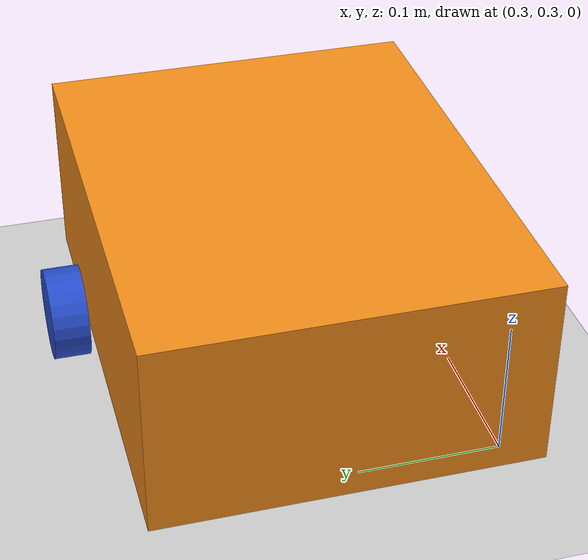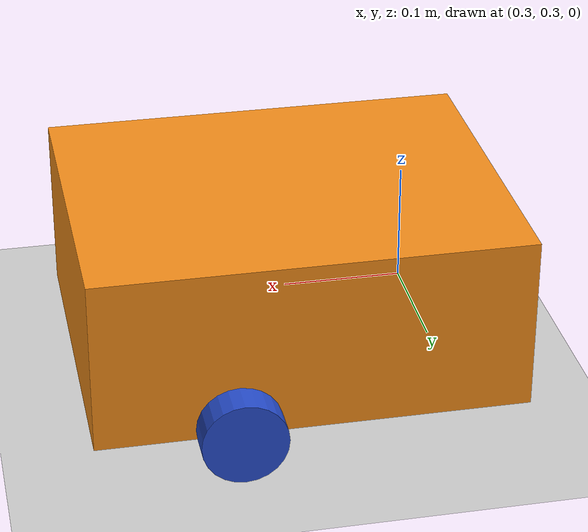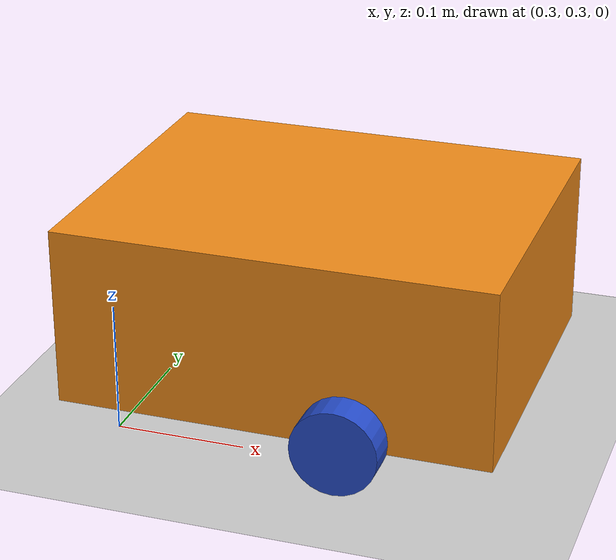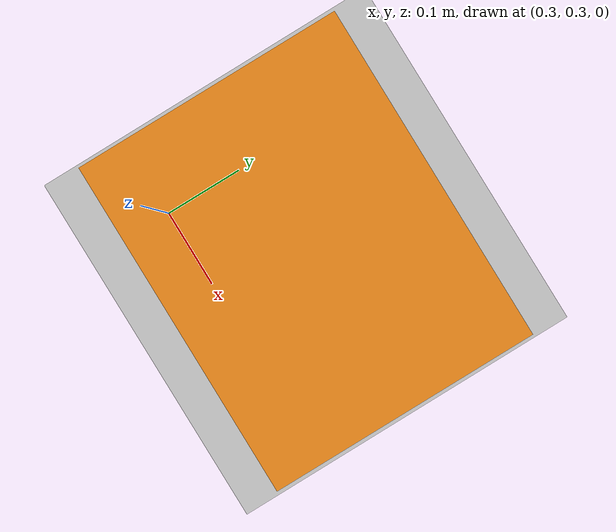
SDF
<sdf version="1.7">
 <world name="default">
  <light name="sun" type="directional">
   <pose>0 0 10 0 -0 0</pose>
   <diffuse>0.8 0.8 0.8 1</diffuse>
   <specular>0.2 0.2 0.2 1</specular>
   <attenuation>
    <range>1000</range>
    <constant>0.9</constant>
    <linear>0.01</linear>
    <quadratic>0.001</quadratic>
   </attenuation>
   <direction>-0.5 0.1 -0.9</direction>
   <spot><inner_angle>0</inner_angle><outer_angle>0</outer_angle><falloff>0</falloff></spot>
  </light>
  <model name="ground_plane">
   <static>1</static>
   <link name="link">
    <collision name="collision">
     <geometry><plane><normal>0 0 1</normal><size>100 100</size></plane></geometry>
     <surface>
      <contact><collide_bitmask>65535</collide_bitmask></contact>
      <friction><ode><mu>100</mu><mu2>50</mu2></ode></friction>
     </surface>
    </collision>
    <visual name="visual">
     <cast_shadows>0</cast_shadows>
     <geometry><plane><normal>0 0 1</normal><size>100 100</size></plane></geometry>
     <material>
      <script><uri>file://media/materials/scripts/gazebo.material</uri><name>Gazebo/Grey</name></script>
     </material>
    </visual>
   </link>
  </model>
  <gravity>0 0 -9.8</gravity>
  <magnetic_field>6e-06 2.3e-05 -4.2e-05</magnetic_field>
  <atmosphere type="adiabatic"/>
  <physics type="ode">
   <max_step_size>0.001</max_step_size>
   <real_time_factor>1</real_time_factor>
   <real_time_update_rate>1000</real_time_update_rate>
  </physics>
  <scene><ambient>0.4 0.4 0.4 1</ambient><background>0.7 0.7 0.7 1</background><shadows>1</shadows></scene>
  <spherical_coordinates>
   <surface_model>EARTH_WGS84</surface_model>
   <latitude_deg>0</latitude_deg>
   <longitude_deg>0</longitude_deg>
   <elevation>0</elevation>
   <heading_deg>0</heading_deg>
  </spherical_coordinates>
  <model name="my_robot_model">
   <link name="base_link">
    <inertial>
     <pose>-0.060314 0 0.057392 0 -0 0</pose>
     <mass>0.51</mass>
     <inertia>
      <ixx>0.00378586</ixx>
      <ixy>0</ixy>
      <ixz>-7.43627e-05</ixz>
      <iyy>0.00561975</iyy>
      <iyz>0</iyz>
      <izz>0.00768637</izz>
     </inertia>
    </inertial>
    <collision name="base_link_fixed_joint_lump__chassis_collision">
     <pose>-0.0585 0 0.059 0 -0 0</pose>
     <geometry><box><size>0.335 0.265 0.138</size></box></geometry>
    </collision>
    <collision name="base_link_fixed_joint_lump__caster_wheel_collision_1">
     <pose>-0.151 0 -0.023 0 -0 0</pose>
     <geometry><sphere><radius>0.01</radius></sphere></geometry>
     <surface><friction><ode><mu>0.001</mu><mu2>0.001</mu2></ode></friction></surface>
    </collision>
    <visual name="base_link_fixed_joint_lump__chassis_visual">
     <pose>-0.0585 0 0.059 0 -0 0</pose>
     <geometry><box><size>0.335 0.265 0.138</size></box></geometry>
     <material>
      <script><name>Gazebo/Orange</name><uri>file://media/materials/scripts/gazebo.material</uri></script>
     </material>
    </visual>
    <visual name="base_link_fixed_joint_lump__caster_wheel_visual_1">
     <pose>-0.151 0 -0.023 0 -0 0</pose>
     <geometry><sphere><radius>0.01</radius></sphere></geometry>
     <material>
      <script><name>Gazebo/White</name><uri>file://media/materials/scripts/gazebo.material</uri></script>
     </material>
    </visual>
   </link>
   <joint name="left_wheel_joint" type="revolute">
    <pose relative_to="base_link">0 0.1485 0 -1.5708 0 0</pose>
    <parent>base_link</parent>
    <child>left_wheel</child>
    <axis>
     <xyz>0 0 1</xyz>
     <limit><lower>-1e+16</lower><upper>1e+16</upper></limit>
     <dynamics><spring_reference>0</spring_reference><spring_stiffness>0</spring_stiffness></dynamics>
    </axis>
   </joint>
   <link name="left_wheel">
    <pose relative_to="left_wheel_joint">0 0 0 0 -0 0</pose>
    <inertial>
     <mass>0.05</mass>
     <inertia>
      <ixx>1.64292e-05</ixx>
      <ixy>0</ixy>
      <ixz>0</ixz>
      <iyy>1.64292e-05</iyy>
      <iyz>0</iyz>
      <izz>2.7225e-05</izz>
     </inertia>
    </inertial>
    <collision name="left_wheel_collision">
     <geometry><sphere><radius>0.033</radius></sphere></geometry>
    </collision>
    <visual name="left_wheel_visual">
     <geometry><cylinder><length>0.026</length><radius>0.033</radius></cylinder></geometry>
     <material>
      <script><name>Gazebo/Blue</name><uri>file://media/materials/scripts/gazebo.material</uri></script>
     </material>
    </visual>
   </link>
   <joint name="right_wheel_joint" type="revolute">
    <pose relative_to="base_link">0 -0.1485 0 1.5708 -0 0</pose>
    <parent>base_link</parent>
    <child>right_wheel</child>
    <axis>
     <xyz>0 0 -1</xyz>
     <limit><lower>-1e+16</lower><upper>1e+16</upper></limit>
     <dynamics><spring_reference>0</spring_reference><spring_stiffness>0</spring_stiffness></dynamics>
    </axis>
   </joint>
   <link name="right_wheel">
    <pose relative_to="right_wheel_joint">0 0 0 0 -0 0</pose>
    <inertial>
     <mass>0.05</mass>
     <inertia>
      <ixx>1.64292e-05</ixx>
      <ixy>0</ixy>
      <ixz>0</ixz>
      <iyy>1.64292e-05</iyy>
      <iyz>0</iyz>
      <izz>2.7225e-05</izz>
     </inertia>
    </inertial>
    <collision name="right_wheel_collision">
     <geometry><sphere><radius>0.033</radius></sphere></geometry>
    </collision>
    <visual name="right_wheel_visual">
     <geometry><cylinder><length>0.026</length><radius>0.033</radius></cylinder></geometry>
     <material>
      <script><name>Gazebo/Blue</name><uri>file://media/materials/scripts/gazebo.material</uri></script>
     </material>
    </visual>
   </link>
   <static>0</static>
   <plugin name="gazebo_ros_diff_drive" filename="libgazebo_ros_diff_drive.so">
    <leftJoint>left_wheel_joint</leftJoint>
    <rightJoint>right_wheel_joint</rightJoint>
    <wheelSeparation>0.297</wheelSeparation>
    <wheelDiameter>0.066</wheelDiameter>
    <commandTopic>/cmd_vel</commandTopic>
    <wheelTorque>200</wheelTorque>
    <wheelAcceleration>10.0</wheelAcceleration>
    <odometryFrame>odom</odometryFrame>
    <robotBaseFrame>base_link</robotBaseFrame>
    <publishOdom>1</publishOdom>
    <publish_odom_tf>1</publish_odom_tf>
    <publishWheelTF>1</publishWheelTF>
    <robotNamespace>/</robotNamespace>
   </plugin>
   <pose>0.4846 0.417426 0.032997 -2.1e-05 2.2e-05 -0.002003</pose>
  </model>
 </world>
</sdf>
